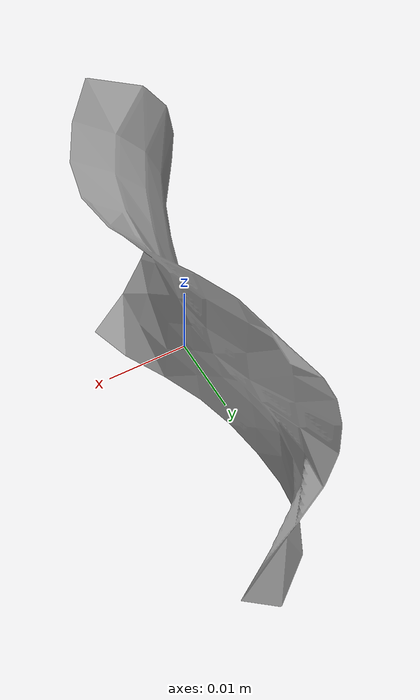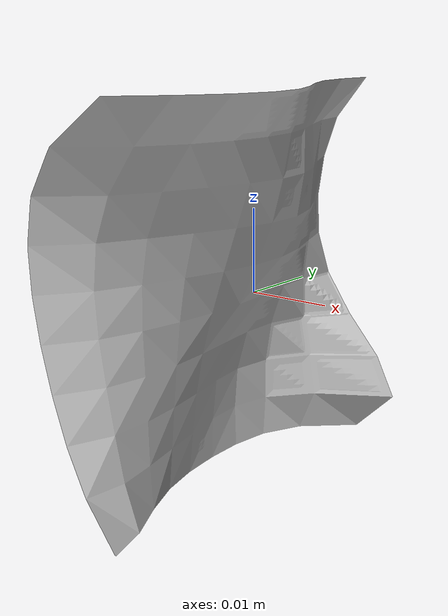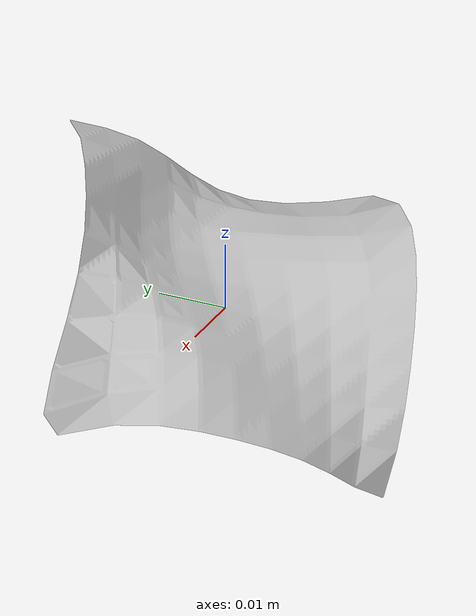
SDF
<?xml version='1.0'?>
<sdf version='1.6'>
  <model name="ID9_130">
  <static>true</static>
    <link name="link">
      <collision name="collision">
        <geometry>
          <mesh>
            <uri>model://test/meshes/ID9_130.dae</uri>
          </mesh>
        </geometry>
      </collision>

      <visual name='visual'>
        <geometry>
          <mesh>
            <uri>model://ID9_130/meshes/ID9_130.dae</uri>
          </mesh>
        </geometry>
      </visual>
    </link>

    </model>
  </sdf>
